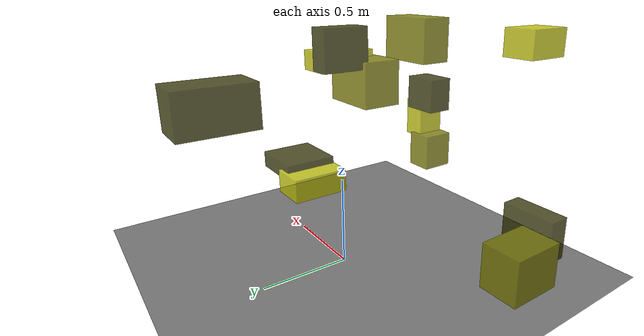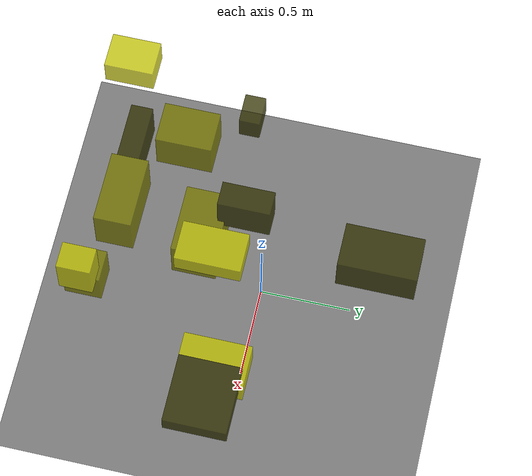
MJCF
<?xml version="1.0"?>
<mujoco model="obstacle_scene">
  <compiler angle="radian" coordinate="local"/>
  <option timestep="0.001" gravity="0 0 -9.81"/>

  <asset>
    <material name="obstacle_mat" rgba="0.8 0.8 0.0 0.8"/>
    <material name="ground_mat" rgba="0.5 0.5 0.5 1"/>
  </asset>

  <worldbody>
    <!-- Ground plane -->
    <geom name="ground" type="plane" size="3 3 0.1" material="ground_mat"/>

    <!-- Obstacles -->
    <body name="obstacle_0" pos="0.808897 -0.135617 0.342345">
      <geom name="obs_0" type="box" size="0.189388 0.172830 0.055036" rgba="0.2 0.2 0.0 0.8"/>
    </body>
    <body name="obstacle_1" pos="0.282043 -0.901184 0.435675">
      <geom name="obs_1" type="box" size="0.086968 0.101016 0.115092" rgba="0.5 0.5 0.0 0.8"/>
    </body>
    <body name="obstacle_2" pos="-0.575544 -0.818641 1.258743">
      <geom name="obs_2" type="box" size="0.092937 0.126979 0.074918" rgba="0.8 0.8 0.0 0.8"/>
    </body>
    <body name="obstacle_3" pos="0.125471 0.638580 0.988904">
      <geom name="obs_3" type="box" size="0.116869 0.204043 0.117085" rgba="0.2 0.2 0.0 0.8"/>
    </body>
    <body name="obstacle_4" pos="-0.777054 -0.598888 0.135920">
      <geom name="obs_4" type="box" size="0.118596 0.160541 0.132897" rgba="0.5 0.5 0.0 0.8"/>
    </body>
    <body name="obstacle_5" pos="0.363150 -0.909435 0.655336">
      <geom name="obs_5" type="box" size="0.071341 0.091139 0.123409" rgba="0.8 0.8 0.0 0.8"/>
    </body>
    <body name="obstacle_6" pos="-0.647518 -0.870875 0.201909">
      <geom name="obs_6" type="box" size="0.164917 0.062160 0.125794" rgba="0.2 0.2 0.0 0.8"/>
    </body>
    <body name="obstacle_7" pos="0.182327 -0.280912 1.008096">
      <geom name="obs_7" type="box" size="0.178169 0.114107 0.129833" rgba="0.5 0.5 0.0 0.8"/>
    </body>
    <body name="obstacle_8" pos="0.595083 -0.127846 0.271485">
      <geom name="obs_8" type="box" size="0.124313 0.186671 0.077831" rgba="0.8 0.8 0.0 0.8"/>
    </body>
    <body name="obstacle_9" pos="0.093418 -0.066907 1.212800">
      <geom name="obs_9" type="box" size="0.063216 0.134339 0.116143" rgba="0.2 0.2 0.0 0.8"/>
    </body>
    <body name="obstacle_10" pos="0.196101 -0.681694 1.220334">
      <geom name="obs_10" type="box" size="0.183630 0.094975 0.132618" rgba="0.5 0.5 0.0 0.8"/>
    </body>
    <body name="obstacle_11" pos="0.319062 -0.192009 1.119010">
      <geom name="obs_11" type="box" size="0.105318 0.170783 0.057645" rgba="0.8 0.8 0.0 0.8"/>
    </body>
    <body name="obstacle_12" pos="-0.504071 -0.170329 1.065280">
      <geom name="obs_12" type="box" size="0.078531 0.054232 0.072958" rgba="0.2 0.2 0.0 0.8"/>
    </body>
  </worldbody>
</mujoco>
